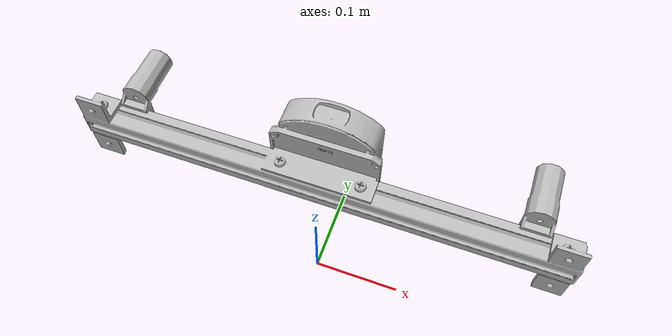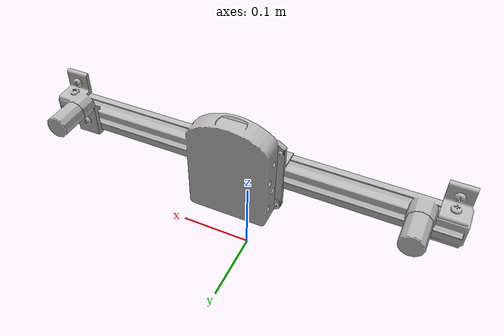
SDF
<sdf version="1.7">
  <model name="wheel">
    <static>false</static>
    <link name="fixpos_link">
      <pose>0 0 0.17 0 0 0</pose>

      <!-- Visual representation -->
      <visual name="fixpos_visual">
        <geometry>
          <mesh>
            <uri>model://fixpos/meshes/fixpos.dae</uri>
            <scale>0.001 0.001 0.001</scale>
          </mesh>
        </geometry>

      </visual>

      <!-- Collision geometry -->
      <collision name="fixpos_collision">
        <pose>0.015 0 0 0 1.57079 0</pose>
        <geometry>
          <cylinder>
            <radius>0.15</radius>
            <length>0.11</length>
          </cylinder>
        </geometry>
   <surface>
          <contact>
            <collide_without_contact>false</collide_without_contact>
          </contact>
          <bounce>
            <restitution_coefficient>0.0</restitution_coefficient>
          </bounce>
          <friction>
            <ode>
              <mu>1.0</mu>
              <mu2>1.0</mu2>
            </ode>
          </friction>
        </surface>
      </collision>

      <!-- Inertial properties -->
      <inertial>
        <mass>1.5</mass>
        <inertia>
          <ixx>0.001</ixx>
          <iyy>0.001</iyy>
          <izz>0.001</izz>
        </inertia>
      </inertial>
    </link>
  </model>
</sdf>
